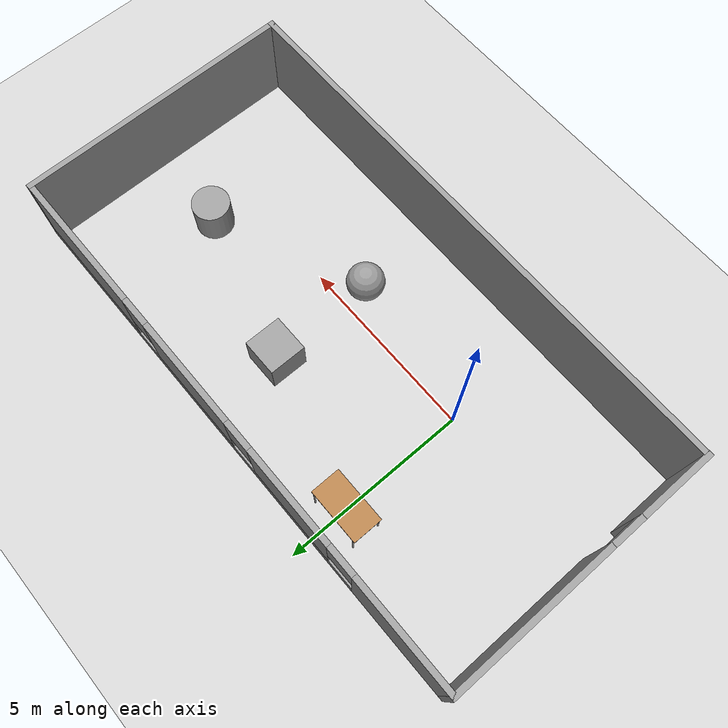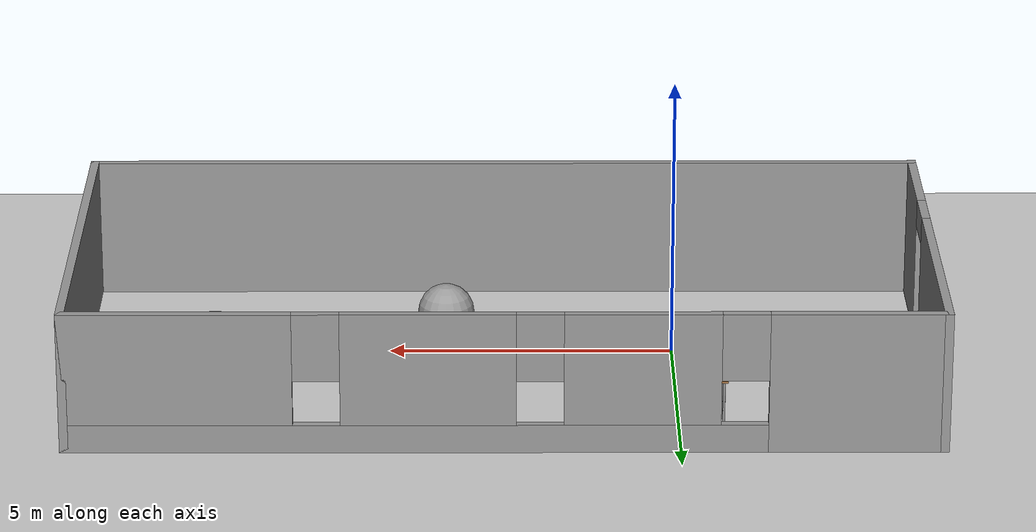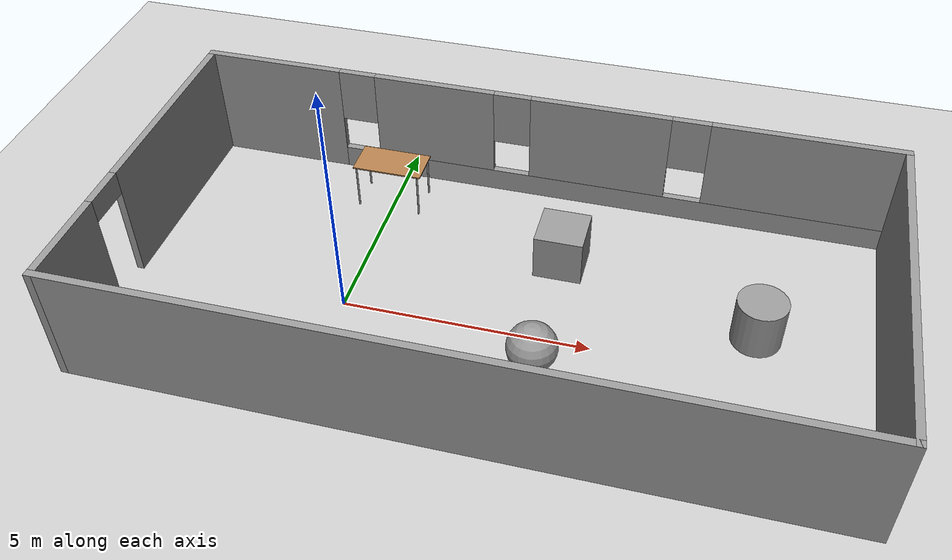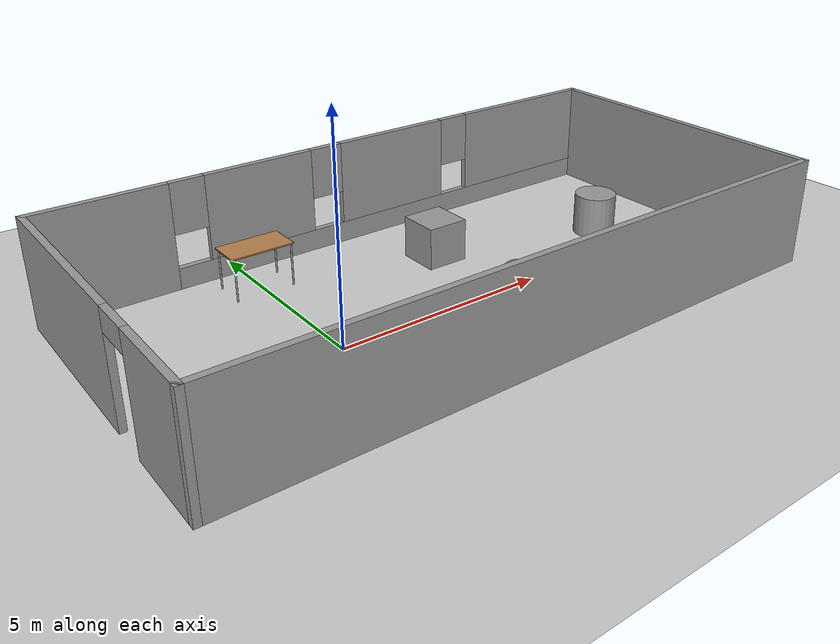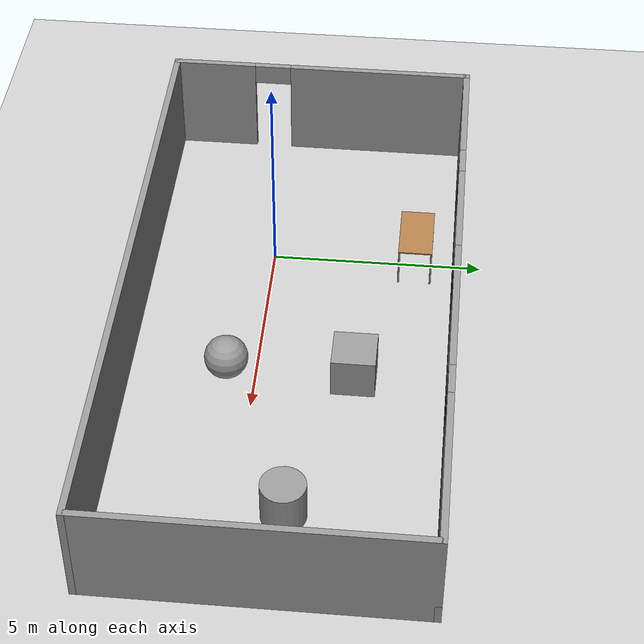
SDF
<sdf version="1.7">
 <world name="default">
  <light name="sun" type="directional">
   <pose>0 0 10 0 -0 0</pose>
   <diffuse>0.8 0.8 0.8 1</diffuse>
   <specular>0.2 0.2 0.2 1</specular>
   <attenuation>
    <range>1000</range>
    <constant>0.9</constant>
    <linear>0.01</linear>
    <quadratic>0.001</quadratic>
   </attenuation>
   <direction>-0.5 0.1 -0.9</direction>
   <spot><inner_angle>0</inner_angle><outer_angle>0</outer_angle><falloff>0</falloff></spot>
  </light>
  <model name="ground_plane">
   <static>1</static>
   <link name="link">
    <collision name="collision">
     <geometry><plane><normal>0 0 1</normal><size>100 100</size></plane></geometry>
     <surface>
      <contact><collide_bitmask>65535</collide_bitmask></contact>
      <friction><ode><mu>100</mu><mu2>50</mu2></ode></friction>
     </surface>
    </collision>
    <visual name="visual">
     <cast_shadows>0</cast_shadows>
     <geometry><plane><normal>0 0 1</normal><size>100 100</size></plane></geometry>
     <material>
      <script><uri>file://media/materials/scripts/gazebo.material</uri><name>Gazebo/Grey</name></script>
     </material>
    </visual>
   </link>
  </model>
  <gravity>0 0 -9.8</gravity>
  <magnetic_field>6e-06 2.3e-05 -4.2e-05</magnetic_field>
  <atmosphere type="adiabatic"/>
  <physics type="ode">
   <max_step_size>0.001</max_step_size>
   <real_time_factor>1</real_time_factor>
   <real_time_update_rate>1000</real_time_update_rate>
  </physics>
  <scene><ambient>0.4 0.4 0.4 1</ambient><background>0.7 0.7 0.7 1</background><shadows>1</shadows></scene>
  <audio><device>default</device></audio>
  <spherical_coordinates>
   <surface_model>EARTH_WGS84</surface_model>
   <latitude_deg>0</latitude_deg>
   <longitude_deg>0</longitude_deg>
   <elevation>0</elevation>
   <heading_deg>0</heading_deg>
  </spherical_coordinates>
  <model name="lab2task4">
   <pose>2.97853 0.729127 0 0 -0 0</pose>
   <link name="Wall_3">
    <pose>-0 3.675 0 0 -0 0</pose>
    <visual name="Wall_3_Visual_0">
     <pose>-5.97273 0 1.25 0 -0 0</pose>
     <geometry><box><size>3.05454 0.15 2.5</size></box></geometry>
     <material>
      <script><uri>file://media/materials/scripts/gazebo.material</uri><name>Gazebo/Grey</name></script>
      <ambient>1 1 1 1</ambient>
     </material>
     <meta><layer>0</layer></meta>
    </visual>
    <collision name="Wall_3_Collision_0">
     <geometry><box><size>3.05454 0.15 2.5</size></box></geometry>
     <pose>-5.97273 0 1.25 0 -0 0</pose>
    </collision>
    <visual name="Wall_3_Visual_1">
     <pose>1.52727 0 0.25 0 -0 0</pose>
     <geometry><box><size>11.9455 0.15 0.5</size></box></geometry>
     <material>
      <script><uri>file://media/materials/scripts/gazebo.material</uri><name>Gazebo/Grey</name></script>
      <ambient>1 1 1 1</ambient>
     </material>
     <meta><layer>0</layer></meta>
    </visual>
    <collision name="Wall_3_Collision_1">
     <geometry><box><size>11.9455 0.15 0.5</size></box></geometry>
     <pose>1.52727 0 0.25 0 -0 0</pose>
    </collision>
    <visual name="Wall_3_Visual_2">
     <pose>-2.32222 0 1.5 0 -0 0</pose>
     <geometry><box><size>2.64649 0.15 2</size></box></geometry>
     <material>
      <script><uri>file://media/materials/scripts/gazebo.material</uri><name>Gazebo/Grey</name></script>
      <ambient>1 1 1 1</ambient>
     </material>
     <meta><layer>0</layer></meta>
    </visual>
    <collision name="Wall_3_Collision_2">
     <geometry><box><size>2.64649 0.15 2</size></box></geometry>
     <pose>-2.32222 0 1.5 0 -0 0</pose>
    </collision>
    <visual name="Wall_3_Visual_3">
     <pose>1.28165 0 1.5 0 -0 0</pose>
     <geometry><box><size>2.96124 0.15 2</size></box></geometry>
     <material>
      <script><uri>file://media/materials/scripts/gazebo.material</uri><name>Gazebo/Grey</name></script>
      <ambient>1 1 1 1</ambient>
     </material>
     <meta><layer>0</layer></meta>
    </visual>
    <collision name="Wall_3_Collision_3">
     <geometry><box><size>2.96124 0.15 2</size></box></geometry>
     <pose>1.28165 0 1.5 0 -0 0</pose>
    </collision>
    <visual name="Wall_3_Visual_4">
     <pose>5.53113 0 1.5 0 -0 0</pose>
     <geometry><box><size>3.93773 0.15 2</size></box></geometry>
     <material>
      <script><uri>file://media/materials/scripts/gazebo.material</uri><name>Gazebo/Grey</name></script>
      <ambient>1 1 1 1</ambient>
     </material>
     <meta><layer>0</layer></meta>
    </visual>
    <collision name="Wall_3_Collision_4">
     <geometry><box><size>3.93773 0.15 2</size></box></geometry>
     <pose>5.53113 0 1.5 0 -0 0</pose>
    </collision>
    <visual name="Wall_3_Visual_5">
     <pose>-4.04547 0 1.9 0 -0 0</pose>
     <geometry><box><size>0.8 0.15 1.2</size></box></geometry>
     <material>
      <script><uri>file://media/materials/scripts/gazebo.material</uri><name>Gazebo/Grey</name></script>
      <ambient>1 1 1 1</ambient>
     </material>
     <meta><layer>0</layer></meta>
    </visual>
    <collision name="Wall_3_Collision_5">
     <geometry><box><size>0.8 0.15 1.2</size></box></geometry>
     <pose>-4.04547 0 1.9 0 -0 0</pose>
    </collision>
    <visual name="Wall_3_Visual_6">
     <pose>-0.598971 0 1.9 0 -0 0</pose>
     <geometry><box><size>0.8 0.15 1.2</size></box></geometry>
     <material>
      <script><uri>file://media/materials/scripts/gazebo.material</uri><name>Gazebo/Grey</name></script>
      <ambient>1 1 1 1</ambient>
     </material>
     <meta><layer>0</layer></meta>
    </visual>
    <collision name="Wall_3_Collision_6">
     <geometry><box><size>0.8 0.15 1.2</size></box></geometry>
     <pose>-0.598971 0 1.9 0 -0 0</pose>
    </collision>
    <visual name="Wall_3_Visual_7">
     <pose>3.16227 0 1.9 0 -0 0</pose>
     <geometry><box><size>0.8 0.15 1.2</size></box></geometry>
     <material>
      <script><uri>file://media/materials/scripts/gazebo.material</uri><name>Gazebo/Grey</name></script>
      <ambient>1 1 1 1</ambient>
     </material>
     <meta><layer>0</layer></meta>
    </visual>
    <collision name="Wall_3_Collision_7">
     <geometry><box><size>0.8 0.15 1.2</size></box></geometry>
     <pose>3.16227 0 1.9 0 -0 0</pose>
    </collision>
   </link>
   <link name="Wall_4">
    <collision name="Wall_4_Collision">
     <geometry><box><size>7.5 0.15 2.5</size></box></geometry>
     <pose>0 0 1.25 0 -0 0</pose>
    </collision>
    <visual name="Wall_4_Visual">
     <pose>0 0 1.25 0 -0 0</pose>
     <geometry><box><size>7.5 0.15 2.5</size></box></geometry>
     <material>
      <script><uri>file://media/materials/scripts/gazebo.material</uri><name>Gazebo/Grey</name></script>
      <ambient>1 1 1 1</ambient>
     </material>
     <meta><layer>0</layer></meta>
    </visual>
    <pose>7.425 0 0 0 -0 -1.5708</pose>
   </link>
   <link name="Wall_5">
    <collision name="Wall_5_Collision">
     <geometry><box><size>15 0.15 2.5</size></box></geometry>
     <pose>0 0 1.25 0 -0 0</pose>
    </collision>
    <visual name="Wall_5_Visual">
     <pose>0 0 1.25 0 -0 0</pose>
     <geometry><box><size>15 0.15 2.5</size></box></geometry>
     <material>
      <script><uri>file://media/materials/scripts/gazebo.material</uri><name>Gazebo/Grey</name></script>
      <ambient>1 1 1 1</ambient>
     </material>
     <meta><layer>0</layer></meta>
    </visual>
    <pose>-0 -3.675 0 0 -0 3.14159</pose>
   </link>
   <link name="Wall_6">
    <pose>-7.425 0 0 0 -0 1.5708</pose>
    <visual name="Wall_6_Visual_0">
     <pose>-2.71434 0 1.25 0 -0 0</pose>
     <geometry><box><size>2.07131 0.15 2.5</size></box></geometry>
     <material>
      <script><uri>file://media/materials/scripts/gazebo.material</uri><name>Gazebo/Grey</name></script>
      <ambient>1 1 1 1</ambient>
     </material>
     <meta><layer>0</layer></meta>
    </visual>
    <collision name="Wall_6_Collision_0">
     <geometry><box><size>2.07131 0.15 2.5</size></box></geometry>
     <pose>-2.71434 0 1.25 0 -0 0</pose>
    </collision>
    <visual name="Wall_6_Visual_1">
     <pose>1.48566 0 1.25 0 -0 0</pose>
     <geometry><box><size>4.52869 0.15 2.5</size></box></geometry>
     <material>
      <script><uri>file://media/materials/scripts/gazebo.material</uri><name>Gazebo/Grey</name></script>
      <ambient>1 1 1 1</ambient>
     </material>
     <meta><layer>0</layer></meta>
    </visual>
    <collision name="Wall_6_Collision_1">
     <geometry><box><size>4.52869 0.15 2.5</size></box></geometry>
     <pose>1.48566 0 1.25 0 -0 0</pose>
    </collision>
    <visual name="Wall_6_Visual_2">
     <pose>-1.22869 0 2.25 0 -0 0</pose>
     <geometry><box><size>0.9 0.15 0.5</size></box></geometry>
     <material>
      <script><uri>file://media/materials/scripts/gazebo.material</uri><name>Gazebo/Grey</name></script>
      <ambient>1 1 1 1</ambient>
     </material>
     <meta><layer>0</layer></meta>
    </visual>
    <collision name="Wall_6_Collision_2">
     <geometry><box><size>0.9 0.15 0.5</size></box></geometry>
     <pose>-1.22869 0 2.25 0 -0 0</pose>
    </collision>
   </link>
   <static>1</static>
  </model>
  <model name="unit_box">
   <pose>3.97093 2.24359 0.499995 0 1e-05 0</pose>
   <link name="link">
    <inertial>
     <mass>1</mass>
     <inertia>
      <ixx>0.166667</ixx>
      <ixy>0</ixy>
      <ixz>0</ixz>
      <iyy>0.166667</iyy>
      <iyz>0</iyz>
      <izz>0.166667</izz>
     </inertia>
    </inertial>
    <collision name="collision"><geometry><box><size>1 1 1</size></box></geometry></collision>
    <visual name="visual">
     <geometry><box><size>1 1 1</size></box></geometry>
     <material>
      <script><name>Gazebo/Grey</name><uri>file://media/materials/scripts/gazebo.material</uri></script>
     </material>
    </visual>
   </link>
  </model>
  <model name="unit_cylinder">
   <pose>8.05683 1.07116 0.499993 -3e-06 -3e-06 0</pose>
   <link name="link">
    <inertial>
     <mass>1</mass>
     <inertia><ixx>0.145833</ixx><ixy>0</ixy><ixz>0</ixz><iyy>0.145833</iyy><iyz>0</iyz><izz>0.125</izz></inertia>
    </inertial>
    <collision name="collision">
     <geometry><cylinder><radius>0.5</radius><length>1</length></cylinder></geometry>
    </collision>
    <visual name="visual">
     <geometry><cylinder><radius>0.5</radius><length>1</length></cylinder></geometry>
     <material>
      <script><name>Gazebo/Grey</name><uri>file://media/materials/scripts/gazebo.material</uri></script>
     </material>
    </visual>
   </link>
  </model>
  <model name="unit_sphere">
   <pose>4.00499 -0.660187 0.5 0 -0 0</pose>
   <link name="link">
    <inertial>
     <mass>1</mass>
     <inertia><ixx>0.1</ixx><ixy>0</ixy><ixz>0</ixz><iyy>0.1</iyy><iyz>0</iyz><izz>0.1</izz></inertia>
    </inertial>
    <collision name="collision"><geometry><sphere><radius>0.5</radius></sphere></geometry></collision>
    <visual name="visual">
     <geometry><sphere><radius>0.5</radius></sphere></geometry>
     <material>
      <script><name>Gazebo/Grey</name><uri>file://media/materials/scripts/gazebo.material</uri></script>
     </material>
    </visual>
   </link>
  </model>
  <model name="table">
   <static>1</static>
   <link name="link">
    <collision name="surface">
     <pose>0 0 1 0 -0 0</pose>
     <geometry><box><size>1.5 0.8 0.03</size></box></geometry>
     <surface><friction><ode><mu>0.6</mu><mu2>0.6</mu2></ode></friction></surface>
    </collision>
    <visual name="visual1">
     <pose>0 0 1 0 -0 0</pose>
     <geometry><box><size>1.5 0.8 0.03</size></box></geometry>
     <material>
      <script><uri>file://media/materials/scripts/gazebo.material</uri><name>Gazebo/Wood</name></script>
     </material>
    </visual>
    <collision name="front_left_leg">
     <pose>0.68 0.38 0.5 0 -0 0</pose>
     <geometry><cylinder><radius>0.02</radius><length>1</length></cylinder></geometry>
    </collision>
    <visual name="front_left_leg">
     <pose>0.68 0.38 0.5 0 -0 0</pose>
     <geometry><cylinder><radius>0.02</radius><length>1</length></cylinder></geometry>
     <material>
      <script><uri>file://media/materials/scripts/gazebo.material</uri><name>Gazebo/Grey</name></script>
     </material>
    </visual>
    <collision name="front_right_leg">
     <pose>0.68 -0.38 0.5 0 -0 0</pose>
     <geometry><cylinder><radius>0.02</radius><length>1</length></cylinder></geometry>
    </collision>
    <visual name="front_right_leg">
     <pose>0.68 -0.38 0.5 0 -0 0</pose>
     <geometry><cylinder><radius>0.02</radius><length>1</length></cylinder></geometry>
     <material>
      <script><uri>file://media/materials/scripts/gazebo.material</uri><name>Gazebo/Grey</name></script>
     </material>
    </visual>
    <collision name="back_right_leg">
     <pose>-0.68 -0.38 0.5 0 -0 0</pose>
     <geometry><cylinder><radius>0.02</radius><length>1</length></cylinder></geometry>
    </collision>
    <visual name="back_right_leg">
     <pose>-0.68 -0.38 0.5 0 -0 0</pose>
     <geometry><cylinder><radius>0.02</radius><length>1</length></cylinder></geometry>
     <material>
      <script><uri>file://media/materials/scripts/gazebo.material</uri><name>Gazebo/Grey</name></script>
     </material>
    </visual>
    <collision name="back_left_leg">
     <pose>-0.68 0.38 0.5 0 -0 0</pose>
     <geometry><cylinder><radius>0.02</radius><length>1</length></cylinder></geometry>
    </collision>
    <visual name="back_left_leg">
     <pose>-0.68 0.38 0.5 0 -0 0</pose>
     <geometry><cylinder><radius>0.02</radius><length>1</length></cylinder></geometry>
     <material>
      <script><uri>file://media/materials/scripts/gazebo.material</uri><name>Gazebo/Grey</name></script>
     </material>
    </visual>
   </link>
   <pose>-0.063044 3.42704 0 0 -0 0</pose>
  </model>
 </world>
</sdf>
